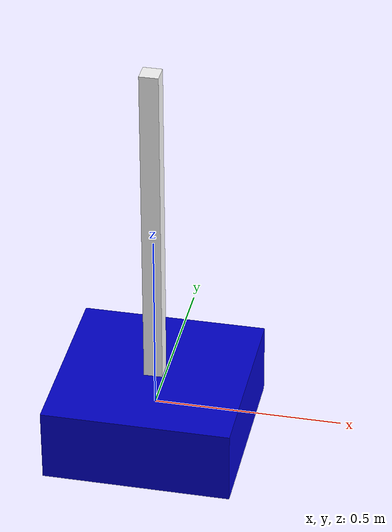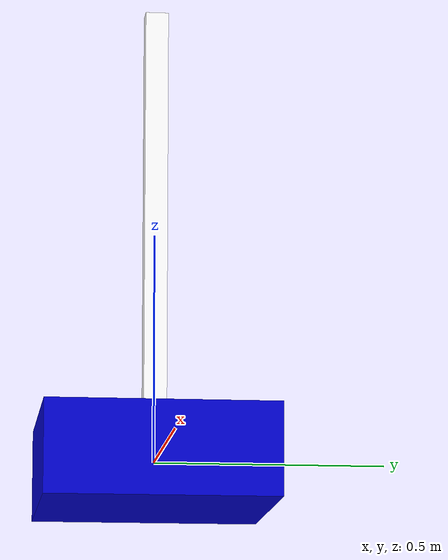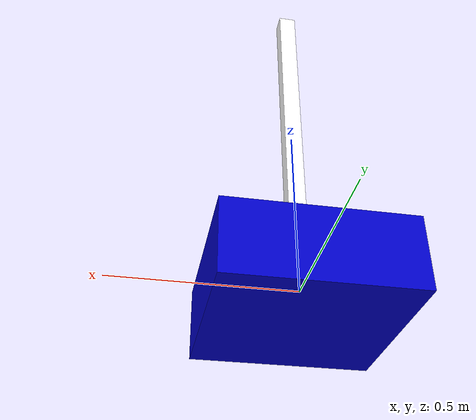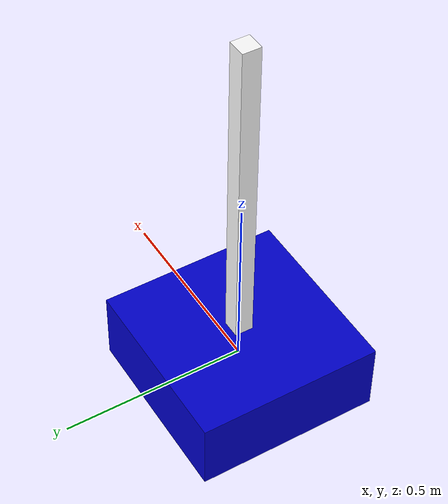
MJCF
<mujoco model="cartpole">
  <option gravity="0 0 -9.81"/>
  <worldbody>
    <body name="cart" pos="0 0 0">
      <joint name="slider" type="slide" axis="1 0 0" range="-4 4" damping="0.0"/>
      <inertial pos="0 0 0" mass="1.0" diaginertia="1.0 1.0 1.0"/>
      <geom name="cart_geom" type="box" size="0.25 0.25 0.1" contype="0" conaffinity="0" rgba="0 0 0.8 1"/>
      <body name="pole" pos="0 0 0">
        <joint name="hinge" type="hinge" axis="0 1 0" damping="0.0"/>
        <inertial pos="0 0 0.5" mass="10.0" diaginertia="1.0 1.0 1.0"/>
        <geom name="pole_geom" type="box" pos="0 0 0.5" size="0.025 0.025 0.5" contype="0" conaffinity="0" rgba="1 1 1 1"/>
      </body>
    </body>
  </worldbody>
</mujoco>
